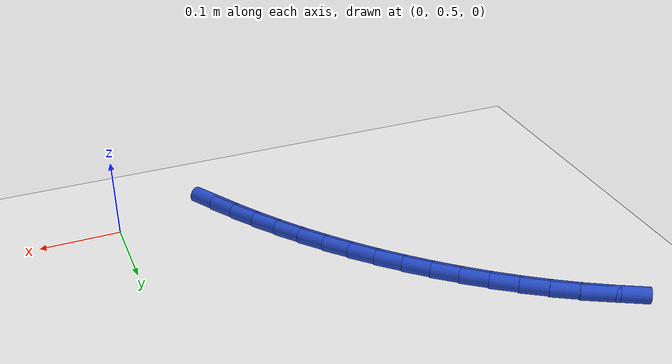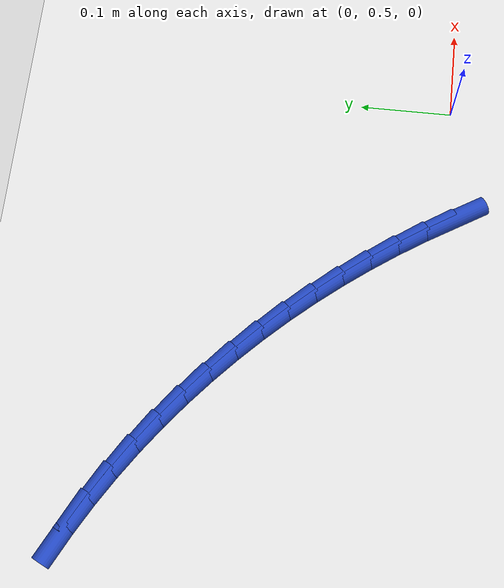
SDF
<sdf version="1.6">
 <world name="default">
  <model name="ground_plane">
   <static>1</static>
   <link name="link">
    <collision name="collision">
     <geometry><plane><normal>0 0 1</normal><size>100 100</size></plane></geometry>
     <surface><friction><ode><mu>100</mu><mu2>50</mu2></ode></friction></surface>
    </collision>
    <visual name="visual">
     <cast_shadows>0</cast_shadows>
     <geometry><plane><normal>0 0 1</normal><size>100 100</size></plane></geometry>
     <material>
      <script><uri>file://media/materials/scripts/gazebo.material</uri><name>Gazebo/WhiteGlow</name></script>
     </material>
    </visual>
   </link>
  </model>
  <model name="line">
   <link name="link_15">
    <pose>-0.1318210910600857 0.4940749476631881 0.01 0 1.57 -1.0289761606273053</pose>
    <collision name="collision">
     <geometry><cylinder><radius>0.01</radius><length>0.08</length></cylinder></geometry>
    </collision>
    <visual name="visual">
     <material>
      <script><name>Gazebo/Blue</name><uri>file://media/materials/scripts/gazebo.material</uri></script>
     </material>
     <geometry><cylinder><radius>0.01</radius><length>0.08</length></cylinder></geometry>
    </visual>
   </link>
   <link name="link_16">
    <pose>-0.14967922322952787 0.523744226695012 0.01 0 1.57 -0.9942017174378756</pose>
    <collision name="collision">
     <geometry><cylinder><radius>0.01</radius><length>0.08</length></cylinder></geometry>
    </collision>
    <visual name="visual">
     <material>
      <script><name>Gazebo/Blue</name><uri>file://media/materials/scripts/gazebo.material</uri></script>
     </material>
     <geometry><cylinder><radius>0.01</radius><length>0.08</length></cylinder></geometry>
    </visual>
   </link>
   <link name="link_17">
    <pose>-0.16856023130918737 0.5527779896417879 0.01 0 1.57 -0.9594160484844179</pose>
    <collision name="collision">
     <geometry><cylinder><radius>0.01</radius><length>0.08</length></cylinder></geometry>
    </collision>
    <visual name="visual">
     <material>
      <script><name>Gazebo/Blue</name><uri>file://media/materials/scripts/gazebo.material</uri></script>
     </material>
     <geometry><cylinder><radius>0.01</radius><length>0.08</length></cylinder></geometry>
    </visual>
   </link>
   <link name="link_18">
    <pose>-0.18843887659213815 0.581136539745848 0.01 0 1.57 -0.9245616724993994</pose>
    <collision name="collision">
     <geometry><cylinder><radius>0.01</radius><length>0.08</length></cylinder></geometry>
    </collision>
    <visual name="visual">
     <material>
      <script><name>Gazebo/Blue</name><uri>file://media/materials/scripts/gazebo.material</uri></script>
     </material>
     <geometry><cylinder><radius>0.01</radius><length>0.08</length></cylinder></geometry>
    </visual>
   </link>
   <link name="link_19">
    <pose>-0.2092899203714542 0.6087801802495251 0.01 0 1.57 -0.8895814887936446</pose>
    <collision name="collision">
     <geometry><cylinder><radius>0.01</radius><length>0.08</length></cylinder></geometry>
    </collision>
    <visual name="visual">
     <material>
      <script><name>Gazebo/Blue</name><uri>file://media/materials/scripts/gazebo.material</uri></script>
     </material>
     <geometry><cylinder><radius>0.01</radius><length>0.08</length></cylinder></geometry>
    </visual>
   </link>
   <link name="link_20">
    <pose>-0.23108812394020967 0.6356692143951516 0.01 0 1.57 -0.8544190768408078</pose>
    <collision name="collision">
     <geometry><cylinder><radius>0.01</radius><length>0.08</length></cylinder></geometry>
    </collision>
    <visual name="visual">
     <material>
      <script><name>Gazebo/Blue</name><uri>file://media/materials/scripts/gazebo.material</uri></script>
     </material>
     <geometry><cylinder><radius>0.01</radius><length>0.08</length></cylinder></geometry>
    </visual>
   </link>
   <link name="link_21">
    <pose>-0.2538082485914784 0.6617639454250592 0.01 0 1.57 -0.8190190194039858</pose>
    <collision name="collision">
     <geometry><cylinder><radius>0.01</radius><length>0.08</length></cylinder></geometry>
    </collision>
    <visual name="visual">
     <material>
      <script><name>Gazebo/Blue</name><uri>file://media/materials/scripts/gazebo.material</uri></script>
     </material>
     <geometry><cylinder><radius>0.01</radius><length>0.08</length></cylinder></geometry>
    </visual>
   </link>
   <link name="link_22">
    <pose>-0.2774250556183345 0.6870246765815813 0.01 0 1.57 -0.783327259362871</pose>
    <collision name="collision">
     <geometry><cylinder><radius>0.01</radius><length>0.08</length></cylinder></geometry>
    </collision>
    <visual name="visual">
     <material>
      <script><name>Gazebo/Blue</name><uri>file://media/materials/scripts/gazebo.material</uri></script>
     </material>
     <geometry><cylinder><radius>0.01</radius><length>0.08</length></cylinder></geometry>
    </visual>
   </link>
   <link name="link_23">
    <pose>-0.30191330631385205 0.7114117111070501 0.01 0 1.57 -0.7472765176907674</pose>
    <collision name="collision">
     <geometry><cylinder><radius>0.01</radius><length>0.08</length></cylinder></geometry>
    </collision>
    <visual name="visual">
     <material>
      <script><name>Gazebo/Blue</name><uri>file://media/materials/scripts/gazebo.material</uri></script>
     </material>
     <geometry><cylinder><radius>0.01</radius><length>0.08</length></cylinder></geometry>
    </visual>
   </link>
   <link name="link_24">
    <pose>-0.32724663166815404 0.7348835995864016 0.01 0 1.57 -0.7107102129986699</pose>
    <collision name="collision">
     <geometry><cylinder><radius>0.01</radius><length>0.08</length></cylinder></geometry>
    </collision>
    <visual name="visual">
     <material>
      <script><name>Gazebo/Blue</name><uri>file://media/materials/scripts/gazebo.material</uri></script>
     </material>
     <geometry><cylinder><radius>0.01</radius><length>0.08</length></cylinder></geometry>
    </visual>
   </link>
   <link name="link_25">
    <pose>-0.35339205602547213 0.7573886482831051 0.01 0 1.57 -0.6734958401632576</pose>
    <collision name="collision">
     <geometry><cylinder><radius>0.01</radius><length>0.08</length></cylinder></geometry>
    </collision>
    <visual name="visual">
     <material>
      <script><name>Gazebo/Blue</name><uri>file://media/materials/scripts/gazebo.material</uri></script>
     </material>
     <geometry><cylinder><radius>0.01</radius><length>0.08</length></cylinder></geometry>
    </visual>
   </link>
   <link name="link_26">
    <pose>-0.38031421034018076 0.7788714522499031 0.01 0 1.57 -0.6355304671792799</pose>
    <collision name="collision">
     <geometry><cylinder><radius>0.01</radius><length>0.08</length></cylinder></geometry>
    </collision>
    <visual name="visual">
     <material>
      <script><name>Gazebo/Blue</name><uri>file://media/materials/scripts/gazebo.material</uri></script>
     </material>
     <geometry><cylinder><radius>0.01</radius><length>0.08</length></cylinder></geometry>
    </visual>
   </link>
   <link name="link_27">
    <pose>-0.40797772224425355 0.799276601387796 0.01 0 1.57 -0.5967143540920707</pose>
    <collision name="collision">
     <geometry><cylinder><radius>0.01</radius><length>0.08</length></cylinder></geometry>
    </collision>
    <visual name="visual">
     <material>
      <script><name>Gazebo/Blue</name><uri>file://media/materials/scripts/gazebo.material</uri></script>
     </material>
     <geometry><cylinder><radius>0.01</radius><length>0.08</length></cylinder></geometry>
    </visual>
   </link>
   <link name="link_28">
    <pose>-0.43634721936966486 0.8185486855977848 0.01 0 1.57 -0.5569519282279846</pose>
    <collision name="collision">
     <geometry><cylinder><radius>0.01</radius><length>0.08</length></cylinder></geometry>
    </collision>
    <visual name="visual">
     <material>
      <script><name>Gazebo/Blue</name><uri>file://media/materials/scripts/gazebo.material</uri></script>
     </material>
     <geometry><cylinder><radius>0.01</radius><length>0.08</length></cylinder></geometry>
    </visual>
   </link>
   <link name="link_29">
    <pose>-0.465387329348389 0.8366322947808702 0.01 0 1.57 -0.5161844385838655</pose>
    <collision name="collision">
     <geometry><cylinder><radius>0.01</radius><length>0.08</length></cylinder></geometry>
    </collision>
    <visual name="visual">
     <material>
      <script><name>Gazebo/Blue</name><uri>file://media/materials/scripts/gazebo.material</uri></script>
     </material>
     <geometry><cylinder><radius>0.01</radius><length>0.08</length></cylinder></geometry>
    </visual>
   </link>
   <link name="link_30">
    <pose>-0.4950625956150744 0.8534731996230657 0.01 0 1.57 -0.4760872589783241</pose>
    <collision name="collision">
     <geometry><cylinder><radius>0.01</radius><length>0.08</length></cylinder></geometry>
    </collision>
    <visual name="visual">
     <material>
      <script><name>Gazebo/Blue</name><uri>file://media/materials/scripts/gazebo.material</uri></script>
     </material>
     <geometry><cylinder><radius>0.01</radius><length>0.08</length></cylinder></geometry>
    </visual>
   </link>
  </model>
 </world>
</sdf>
